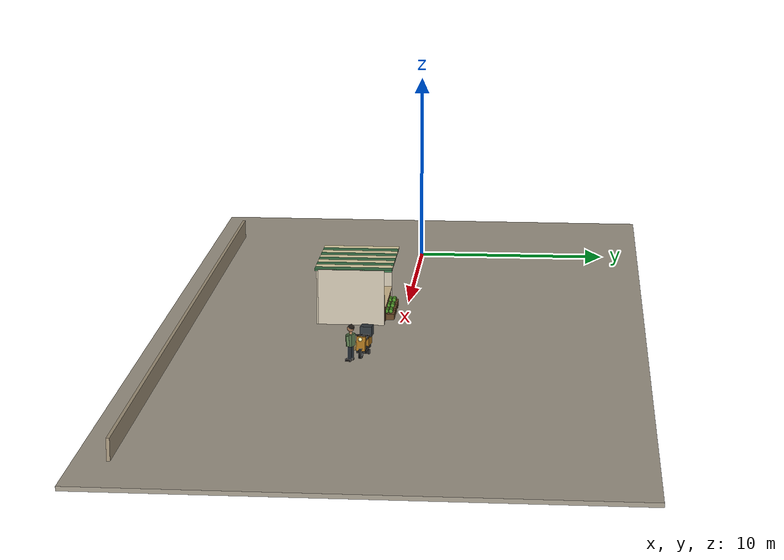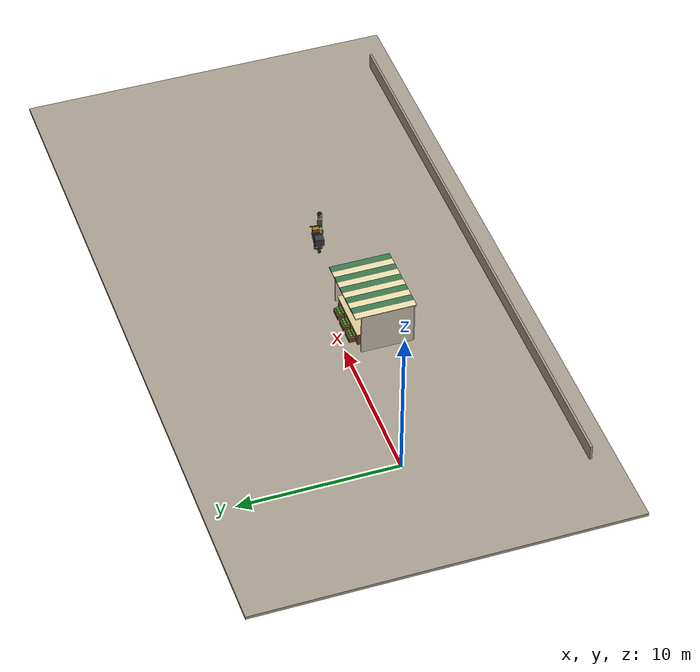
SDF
<sdf version="1.10">
 <world name="swan_market">
  <model name="ground">
   <static>true</static>
   <pose>15 0 -0.1 0 0 0</pose>
   <link name="body">
    <collision name="box_collision"><geometry><box><size>46 24 0.2</size></box></geometry></collision>
    <visual name="box_visual">
     <geometry><box><size>46 24 0.2</size></box></geometry>
     <material><ambient>0.64 0.61 0.55 1</ambient><diffuse>0.64 0.61 0.55 1</diffuse></material>
    </visual>
   </link>
  </model>
  <model name="boundary_-1">
   <static>true</static>
   <pose>16 -10.5 0.5 0 0 0</pose>
   <link name="body">
    <collision name="box_collision"><geometry><box><size>38 0.15 1</size></box></geometry></collision>
    <visual name="box_visual">
     <geometry><box><size>38 0.15 1</size></box></geometry>
     <material><ambient>0.65 0.59 0.49 1</ambient><diffuse>0.65 0.59 0.49 1</diffuse></material>
    </visual>
   </link>
  </model>
  <model name="stall_05">
   <static>true</static>
   <pose>12 -2.5575 0 0 0 0</pose>
   <link name="body">
    <collision name="rear_collision">
     <pose>0 -1.65 1.4 0 0 0</pose>
     <geometry><box><size>4.8 0.15 2.8</size></box></geometry>
    </collision>
    <visual name="rear_visual">
     <pose>0 -1.65 1.4 0 0 0</pose>
     <geometry><box><size>4.8 0.15 2.8</size></box></geometry>
     <material><ambient>0.78 0.74 0.65 1</ambient><diffuse>0.78 0.74 0.65 1</diffuse></material>
    </visual>
    <collision name="side_-2.35_collision">
     <pose>-2.35 0 1.4 0 0 0</pose>
     <geometry><box><size>0.12 3.3 2.8</size></box></geometry>
    </collision>
    <visual name="side_-2.35_visual">
     <pose>-2.35 0 1.4 0 0 0</pose>
     <geometry><box><size>0.12 3.3 2.8</size></box></geometry>
     <material><ambient>0.81 0.77 0.69 1</ambient><diffuse>0.81 0.77 0.69 1</diffuse></material>
    </visual>
    <collision name="side_2.35_collision">
     <pose>2.35 0 1.4 0 0 0</pose>
     <geometry><box><size>0.12 3.3 2.8</size></box></geometry>
    </collision>
    <visual name="side_2.35_visual">
     <pose>2.35 0 1.4 0 0 0</pose>
     <geometry><box><size>0.12 3.3 2.8</size></box></geometry>
     <material><ambient>0.81 0.77 0.69 1</ambient><diffuse>0.81 0.77 0.69 1</diffuse></material>
    </visual>
    <collision name="counter_collision">
     <pose>0 1.22 0.4 0 0 0</pose>
     <geometry><box><size>3.5 0.85 0.8</size></box></geometry>
    </collision>
    <visual name="counter_visual">
     <pose>0 1.22 0.4 0 0 0</pose>
     <geometry><box><size>3.5 0.85 0.8</size></box></geometry>
     <material><ambient>0.47 0.32 0.21 1</ambient><diffuse>0.47 0.32 0.21 1</diffuse></material>
    </visual>
    <collision name="counter_top_collision">
     <pose>0 1.22 0.83 0 0 0</pose>
     <geometry><box><size>3.6 0.95 0.06</size></box></geometry>
    </collision>
    <visual name="counter_top_visual">
     <pose>0 1.22 0.83 0 0 0</pose>
     <geometry><box><size>3.6 0.95 0.06</size></box></geometry>
     <material><ambient>0.86 0.77 0.59 1</ambient><diffuse>0.86 0.77 0.59 1</diffuse></material>
    </visual>
    <collision name="awning_0_collision">
     <pose>-2.16 0.1 2.78 0 0 0</pose>
     <geometry><box><size>0.48 3.85 0.1</size></box></geometry>
    </collision>
    <visual name="awning_0_visual">
     <pose>-2.16 0.1 2.78 0 0 0</pose>
     <geometry><box><size>0.48 3.85 0.1</size></box></geometry>
     <material><ambient>0.92 0.86 0.68 1</ambient><diffuse>0.92 0.86 0.68 1</diffuse></material>
    </visual>
    <collision name="awning_1_collision">
     <pose>-1.68 0.1 2.78 0 0 0</pose>
     <geometry><box><size>0.48 3.85 0.1</size></box></geometry>
    </collision>
    <visual name="awning_1_visual">
     <pose>-1.68 0.1 2.78 0 0 0</pose>
     <geometry><box><size>0.48 3.85 0.1</size></box></geometry>
     <material><ambient>0.23 0.46 0.29 1</ambient><diffuse>0.23 0.46 0.29 1</diffuse></material>
    </visual>
    <collision name="awning_2_collision">
     <pose>-1.2 0.1 2.78 0 0 0</pose>
     <geometry><box><size>0.48 3.85 0.1</size></box></geometry>
    </collision>
    <visual name="awning_2_visual">
     <pose>-1.2 0.1 2.78 0 0 0</pose>
     <geometry><box><size>0.48 3.85 0.1</size></box></geometry>
     <material><ambient>0.92 0.86 0.68 1</ambient><diffuse>0.92 0.86 0.68 1</diffuse></material>
    </visual>
    <collision name="awning_3_collision">
     <pose>-0.72 0.1 2.78 0 0 0</pose>
     <geometry><box><size>0.48 3.85 0.1</size></box></geometry>
    </collision>
    <visual name="awning_3_visual">
     <pose>-0.72 0.1 2.78 0 0 0</pose>
     <geometry><box><size>0.48 3.85 0.1</size></box></geometry>
     <material><ambient>0.23 0.46 0.29 1</ambient><diffuse>0.23 0.46 0.29 1</diffuse></material>
    </visual>
    <collision name="awning_4_collision">
     <pose>-0.24 0.1 2.78 0 0 0</pose>
     <geometry><box><size>0.48 3.85 0.1</size></box></geometry>
    </collision>
    <visual name="awning_4_visual">
     <pose>-0.24 0.1 2.78 0 0 0</pose>
     <geometry><box><size>0.48 3.85 0.1</size></box></geometry>
     <material><ambient>0.92 0.86 0.68 1</ambient><diffuse>0.92 0.86 0.68 1</diffuse></material>
    </visual>
    <collision name="awning_5_collision">
     <pose>0.24 0.1 2.78 0 0 0</pose>
     <geometry><box><size>0.48 3.85 0.1</size></box></geometry>
    </collision>
    <visual name="awning_5_visual">
     <pose>0.24 0.1 2.78 0 0 0</pose>
     <geometry><box><size>0.48 3.85 0.1</size></box></geometry>
     <material><ambient>0.23 0.46 0.29 1</ambient><diffuse>0.23 0.46 0.29 1</diffuse></material>
    </visual>
    <collision name="awning_6_collision">
     <pose>0.72 0.1 2.78 0 0 0</pose>
     <geometry><box><size>0.48 3.85 0.1</size></box></geometry>
    </collision>
    <visual name="awning_6_visual">
     <pose>0.72 0.1 2.78 0 0 0</pose>
     <geometry><box><size>0.48 3.85 0.1</size></box></geometry>
     <material><ambient>0.92 0.86 0.68 1</ambient><diffuse>0.92 0.86 0.68 1</diffuse></material>
    </visual>
    <collision name="awning_7_collision">
     <pose>1.2 0.1 2.78 0 0 0</pose>
     <geometry><box><size>0.48 3.85 0.1</size></box></geometry>
    </collision>
    <visual name="awning_7_visual">
     <pose>1.2 0.1 2.78 0 0 0</pose>
     <geometry><box><size>0.48 3.85 0.1</size></box></geometry>
     <material><ambient>0.23 0.46 0.29 1</ambient><diffuse>0.23 0.46 0.29 1</diffuse></material>
    </visual>
    <collision name="awning_8_collision">
     <pose>1.68 0.1 2.78 0 0 0</pose>
     <geometry><box><size>0.48 3.85 0.1</size></box></geometry>
    </collision>
    <visual name="awning_8_visual">
     <pose>1.68 0.1 2.78 0 0 0</pose>
     <geometry><box><size>0.48 3.85 0.1</size></box></geometry>
     <material><ambient>0.92 0.86 0.68 1</ambient><diffuse>0.92 0.86 0.68 1</diffuse></material>
    </visual>
    <collision name="awning_9_collision">
     <pose>2.16 0.1 2.78 0 0 0</pose>
     <geometry><box><size>0.48 3.85 0.1</size></box></geometry>
    </collision>
    <visual name="awning_9_visual">
     <pose>2.16 0.1 2.78 0 0 0</pose>
     <geometry><box><size>0.48 3.85 0.1</size></box></geometry>
     <material><ambient>0.23 0.46 0.29 1</ambient><diffuse>0.23 0.46 0.29 1</diffuse></material>
    </visual>
    <collision name="crate_-1_collision">
     <pose>-1.04 1.77 0.15 0 0 0</pose>
     <geometry><box><size>0.78 0.6 0.3</size></box></geometry>
    </collision>
    <visual name="crate_-1_visual">
     <pose>-1.04 1.77 0.15 0 0 0</pose>
     <geometry><box><size>0.78 0.6 0.3</size></box></geometry>
     <material><ambient>0.4 0.28 0.15 1</ambient><diffuse>0.4 0.28 0.15 1</diffuse></material>
    </visual>
    <visual name="produce_-1_0_visual">
     <pose>-1.25 1.66 0.39 0 0 0</pose>
     <geometry><sphere><radius>0.105</radius></sphere></geometry>
     <material><ambient>0.31 0.58 0.16 1</ambient><diffuse>0.31 0.58 0.16 1</diffuse></material>
    </visual>
    <visual name="produce_-1_1_visual">
     <pose>-1.04 1.66 0.39 0 0 0</pose>
     <geometry><sphere><radius>0.105</radius></sphere></geometry>
     <material><ambient>0.31 0.58 0.16 1</ambient><diffuse>0.31 0.58 0.16 1</diffuse></material>
    </visual>
    <visual name="produce_-1_2_visual">
     <pose>-0.83 1.66 0.39 0 0 0</pose>
     <geometry><sphere><radius>0.105</radius></sphere></geometry>
     <material><ambient>0.31 0.58 0.16 1</ambient><diffuse>0.31 0.58 0.16 1</diffuse></material>
    </visual>
    <visual name="produce_-1_3_visual">
     <pose>-1.25 1.88 0.39 0 0 0</pose>
     <geometry><sphere><radius>0.105</radius></sphere></geometry>
     <material><ambient>0.31 0.58 0.16 1</ambient><diffuse>0.31 0.58 0.16 1</diffuse></material>
    </visual>
    <visual name="produce_-1_4_visual">
     <pose>-1.04 1.88 0.39 0 0 0</pose>
     <geometry><sphere><radius>0.105</radius></sphere></geometry>
     <material><ambient>0.31 0.58 0.16 1</ambient><diffuse>0.31 0.58 0.16 1</diffuse></material>
    </visual>
    <visual name="produce_-1_5_visual">
     <pose>-0.83 1.88 0.39 0 0 0</pose>
     <geometry><sphere><radius>0.105</radius></sphere></geometry>
     <material><ambient>0.31 0.58 0.16 1</ambient><diffuse>0.31 0.58 0.16 1</diffuse></material>
    </visual>
    <collision name="crate_0_collision">
     <pose>0 1.77 0.15 0 0 0</pose>
     <geometry><box><size>0.78 0.6 0.3</size></box></geometry>
    </collision>
    <visual name="crate_0_visual">
     <pose>0 1.77 0.15 0 0 0</pose>
     <geometry><box><size>0.78 0.6 0.3</size></box></geometry>
     <material><ambient>0.4 0.28 0.15 1</ambient><diffuse>0.4 0.28 0.15 1</diffuse></material>
    </visual>
    <visual name="produce_0_0_visual">
     <pose>-0.21 1.66 0.39 0 0 0</pose>
     <geometry><sphere><radius>0.105</radius></sphere></geometry>
     <material><ambient>0.31 0.58 0.16 1</ambient><diffuse>0.31 0.58 0.16 1</diffuse></material>
    </visual>
    <visual name="produce_0_1_visual">
     <pose>0 1.66 0.39 0 0 0</pose>
     <geometry><sphere><radius>0.105</radius></sphere></geometry>
     <material><ambient>0.31 0.58 0.16 1</ambient><diffuse>0.31 0.58 0.16 1</diffuse></material>
    </visual>
    <visual name="produce_0_2_visual">
     <pose>0.21 1.66 0.39 0 0 0</pose>
     <geometry><sphere><radius>0.105</radius></sphere></geometry>
     <material><ambient>0.31 0.58 0.16 1</ambient><diffuse>0.31 0.58 0.16 1</diffuse></material>
    </visual>
    <visual name="produce_0_3_visual">
     <pose>-0.21 1.88 0.39 0 0 0</pose>
     <geometry><sphere><radius>0.105</radius></sphere></geometry>
     <material><ambient>0.31 0.58 0.16 1</ambient><diffuse>0.31 0.58 0.16 1</diffuse></material>
    </visual>
    <visual name="produce_0_4_visual">
     <pose>0 1.88 0.39 0 0 0</pose>
     <geometry><sphere><radius>0.105</radius></sphere></geometry>
     <material><ambient>0.31 0.58 0.16 1</ambient><diffuse>0.31 0.58 0.16 1</diffuse></material>
    </visual>
    <visual name="produce_0_5_visual">
     <pose>0.21 1.88 0.39 0 0 0</pose>
     <geometry><sphere><radius>0.105</radius></sphere></geometry>
     <material><ambient>0.31 0.58 0.16 1</ambient><diffuse>0.31 0.58 0.16 1</diffuse></material>
    </visual>
    <collision name="crate_1_collision">
     <pose>1.04 1.77 0.15 0 0 0</pose>
     <geometry><box><size>0.78 0.6 0.3</size></box></geometry>
    </collision>
    <visual name="crate_1_visual">
     <pose>1.04 1.77 0.15 0 0 0</pose>
     <geometry><box><size>0.78 0.6 0.3</size></box></geometry>
     <material><ambient>0.4 0.28 0.15 1</ambient><diffuse>0.4 0.28 0.15 1</diffuse></material>
    </visual>
    <visual name="produce_1_0_visual">
     <pose>0.83 1.66 0.39 0 0 0</pose>
     <geometry><sphere><radius>0.105</radius></sphere></geometry>
     <material><ambient>0.31 0.58 0.16 1</ambient><diffuse>0.31 0.58 0.16 1</diffuse></material>
    </visual>
    <visual name="produce_1_1_visual">
     <pose>1.04 1.66 0.39 0 0 0</pose>
     <geometry><sphere><radius>0.105</radius></sphere></geometry>
     <material><ambient>0.31 0.58 0.16 1</ambient><diffuse>0.31 0.58 0.16 1</diffuse></material>
    </visual>
    <visual name="produce_1_2_visual">
     <pose>1.25 1.66 0.39 0 0 0</pose>
     <geometry><sphere><radius>0.105</radius></sphere></geometry>
     <material><ambient>0.31 0.58 0.16 1</ambient><diffuse>0.31 0.58 0.16 1</diffuse></material>
    </visual>
    <visual name="produce_1_3_visual">
     <pose>0.83 1.88 0.39 0 0 0</pose>
     <geometry><sphere><radius>0.105</radius></sphere></geometry>
     <material><ambient>0.31 0.58 0.16 1</ambient><diffuse>0.31 0.58 0.16 1</diffuse></material>
    </visual>
    <visual name="produce_1_4_visual">
     <pose>1.04 1.88 0.39 0 0 0</pose>
     <geometry><sphere><radius>0.105</radius></sphere></geometry>
     <material><ambient>0.31 0.58 0.16 1</ambient><diffuse>0.31 0.58 0.16 1</diffuse></material>
    </visual>
    <visual name="produce_1_5_visual">
     <pose>1.25 1.88 0.39 0 0 0</pose>
     <geometry><sphere><radius>0.105</radius></sphere></geometry>
     <material><ambient>0.31 0.58 0.16 1</ambient><diffuse>0.31 0.58 0.16 1</diffuse></material>
    </visual>
   </link>
  </model>
  <model name="shopper_grocery">
   <static>true</static>
   <pose>20.405 -1.9859 0 0 0 -1.9395</pose>
   <link name="body">
    <collision name="leg_-1_collision">
     <pose>0 -0.12 0.4 0 0 0</pose>
     <geometry><cylinder><radius>0.085</radius><length>0.68</length></cylinder></geometry>
    </collision>
    <visual name="leg_-1_visual">
     <pose>0 -0.12 0.4 0 0 0</pose>
     <geometry><cylinder><radius>0.085</radius><length>0.68</length></cylinder></geometry>
     <material><ambient>0.12 0.15 0.18 1</ambient><diffuse>0.12 0.15 0.18 1</diffuse></material>
    </visual>
    <collision name="shoe_-1_collision">
     <pose>0.06 -0.12 0.055 0 0 0</pose>
     <geometry><box><size>0.28 0.17 0.11</size></box></geometry>
    </collision>
    <visual name="shoe_-1_visual">
     <pose>0.06 -0.12 0.055 0 0 0</pose>
     <geometry><box><size>0.28 0.17 0.11</size></box></geometry>
     <material><ambient>0.08 0.07 0.06 1</ambient><diffuse>0.08 0.07 0.06 1</diffuse></material>
    </visual>
    <collision name="arm_-1_collision">
     <pose>0.02 -0.27 1.02 0 -0.12 0</pose>
     <geometry><cylinder><radius>0.068</radius><length>0.48</length></cylinder></geometry>
    </collision>
    <visual name="arm_-1_visual">
     <pose>0.02 -0.27 1.02 0 -0.12 0</pose>
     <geometry><cylinder><radius>0.068</radius><length>0.48</length></cylinder></geometry>
     <material><ambient>0.36 0.48 0.31 1</ambient><diffuse>0.36 0.48 0.31 1</diffuse></material>
    </visual>
    <collision name="leg_1_collision">
     <pose>0 0.12 0.4 0 0 0</pose>
     <geometry><cylinder><radius>0.085</radius><length>0.68</length></cylinder></geometry>
    </collision>
    <visual name="leg_1_visual">
     <pose>0 0.12 0.4 0 0 0</pose>
     <geometry><cylinder><radius>0.085</radius><length>0.68</length></cylinder></geometry>
     <material><ambient>0.12 0.15 0.18 1</ambient><diffuse>0.12 0.15 0.18 1</diffuse></material>
    </visual>
    <collision name="shoe_1_collision">
     <pose>0.06 0.12 0.055 0 0 0</pose>
     <geometry><box><size>0.28 0.17 0.11</size></box></geometry>
    </collision>
    <visual name="shoe_1_visual">
     <pose>0.06 0.12 0.055 0 0 0</pose>
     <geometry><box><size>0.28 0.17 0.11</size></box></geometry>
     <material><ambient>0.08 0.07 0.06 1</ambient><diffuse>0.08 0.07 0.06 1</diffuse></material>
    </visual>
    <collision name="arm_1_collision">
     <pose>0.02 0.27 1.02 0 0.12 0</pose>
     <geometry><cylinder><radius>0.068</radius><length>0.48</length></cylinder></geometry>
    </collision>
    <visual name="arm_1_visual">
     <pose>0.02 0.27 1.02 0 0.12 0</pose>
     <geometry><cylinder><radius>0.068</radius><length>0.48</length></cylinder></geometry>
     <material><ambient>0.36 0.48 0.31 1</ambient><diffuse>0.36 0.48 0.31 1</diffuse></material>
    </visual>
    <collision name="torso_collision">
     <pose>0 0 1.02 0 0 0</pose>
     <geometry><box><size>0.3 0.43 0.58</size></box></geometry>
    </collision>
    <visual name="torso_visual">
     <pose>0 0 1.02 0 0 0</pose>
     <geometry><box><size>0.3 0.43 0.58</size></box></geometry>
     <material><ambient>0.36 0.48 0.31 1</ambient><diffuse>0.36 0.48 0.31 1</diffuse></material>
    </visual>
    <visual name="neck_visual">
     <pose>0 0 1.37 0 0 0</pose>
     <geometry><cylinder><radius>0.07</radius><length>0.13</length></cylinder></geometry>
     <material><ambient>0.77 0.56 0.4 1</ambient><diffuse>0.77 0.56 0.4 1</diffuse></material>
    </visual>
    <collision name="head_collision">
     <pose>0 0 1.57 0 0 0</pose>
     <geometry><sphere><radius>0.16</radius></sphere></geometry>
    </collision>
    <visual name="head_visual">
     <pose>0 0 1.57 0 0 0</pose>
     <geometry><sphere><radius>0.16</radius></sphere></geometry>
     <material><ambient>0.77 0.56 0.4 1</ambient><diffuse>0.77 0.56 0.4 1</diffuse></material>
    </visual>
    <visual name="hair_visual">
     <pose>-0.025 0 1.63 0 0 0</pose>
     <geometry><sphere><radius>0.155</radius></sphere></geometry>
     <material><ambient>0.1 0.08 0.06 1</ambient><diffuse>0.1 0.08 0.06 1</diffuse></material>
    </visual>
    <collision name="shopping_bag_collision">
     <pose>0.04 -0.38 0.6 0 0 0</pose>
     <geometry><box><size>0.24 0.17 0.33</size></box></geometry>
    </collision>
    <visual name="shopping_bag_visual">
     <pose>0.04 -0.38 0.6 0 0 0</pose>
     <geometry><box><size>0.24 0.17 0.33</size></box></geometry>
     <material><ambient>0.78 0.65 0.39 1</ambient><diffuse>0.78 0.65 0.39 1</diffuse></material>
    </visual>
   </link>
  </model>
  <model name="motorcycle_unloading">
   <static>true</static>
   <pose>19.404 -1.4645 0 0 0 -0.14026</pose>
   <link name="body">
    <collision name="tire_0_collision">
     <pose>-0.61 0 0.25 1.5708 0 0</pose>
     <geometry><cylinder><radius>0.25</radius><length>0.14</length></cylinder></geometry>
    </collision>
    <visual name="tire_0_visual">
     <pose>-0.61 0 0.25 1.5708 0 0</pose>
     <geometry><cylinder><radius>0.25</radius><length>0.14</length></cylinder></geometry>
     <material><ambient>0.075 0.075 0.07 1</ambient><diffuse>0.075 0.075 0.07 1</diffuse></material>
    </visual>
    <visual name="hub_0_visual">
     <pose>-0.61 0 0.25 1.5708 0 0</pose>
     <geometry><cylinder><radius>0.13</radius><length>0.145</length></cylinder></geometry>
     <material><ambient>0.57 0.59 0.6 1</ambient><diffuse>0.57 0.59 0.6 1</diffuse></material>
    </visual>
    <collision name="tire_1_collision">
     <pose>0.62 0 0.25 1.5708 0 0</pose>
     <geometry><cylinder><radius>0.25</radius><length>0.14</length></cylinder></geometry>
    </collision>
    <visual name="tire_1_visual">
     <pose>0.62 0 0.25 1.5708 0 0</pose>
     <geometry><cylinder><radius>0.25</radius><length>0.14</length></cylinder></geometry>
     <material><ambient>0.075 0.075 0.07 1</ambient><diffuse>0.075 0.075 0.07 1</diffuse></material>
    </visual>
    <visual name="hub_1_visual">
     <pose>0.62 0 0.25 1.5708 0 0</pose>
     <geometry><cylinder><radius>0.13</radius><length>0.145</length></cylinder></geometry>
     <material><ambient>0.57 0.59 0.6 1</ambient><diffuse>0.57 0.59 0.6 1</diffuse></material>
    </visual>
    <collision name="deck_collision">
     <pose>0 0 0.33 0 0 0</pose>
     <geometry><box><size>1.2 0.43 0.17</size></box></geometry>
    </collision>
    <visual name="deck_visual">
     <pose>0 0 0.33 0 0 0</pose>
     <geometry><box><size>1.2 0.43 0.17</size></box></geometry>
     <material><ambient>0.18 0.18 0.18 1</ambient><diffuse>0.18 0.18 0.18 1</diffuse></material>
    </visual>
    <collision name="rear_body_collision">
     <pose>-0.36 0 0.59 0 0 0</pose>
     <geometry><box><size>0.65 0.46 0.4</size></box></geometry>
    </collision>
    <visual name="rear_body_visual">
     <pose>-0.36 0 0.59 0 0 0</pose>
     <geometry><box><size>0.65 0.46 0.4</size></box></geometry>
     <material><ambient>0.64 0.43 0.1 1</ambient><diffuse>0.64 0.43 0.1 1</diffuse></material>
    </visual>
    <collision name="seat_collision">
     <pose>-0.2 0 0.83 0 0 0</pose>
     <geometry><box><size>0.8 0.4 0.12</size></box></geometry>
    </collision>
    <visual name="seat_visual">
     <pose>-0.2 0 0.83 0 0 0</pose>
     <geometry><box><size>0.8 0.4 0.12</size></box></geometry>
     <material><ambient>0.1 0.1 0.1 1</ambient><diffuse>0.1 0.1 0.1 1</diffuse></material>
    </visual>
    <collision name="front_fairing_collision">
     <pose>0.53 0 0.69 0 -0.2 0</pose>
     <geometry><box><size>0.23 0.43 0.69</size></box></geometry>
    </collision>
    <visual name="front_fairing_visual">
     <pose>0.53 0 0.69 0 -0.2 0</pose>
     <geometry><box><size>0.23 0.43 0.69</size></box></geometry>
     <material><ambient>0.64 0.43 0.1 1</ambient><diffuse>0.64 0.43 0.1 1</diffuse></material>
    </visual>
    <collision name="handlebar_collision">
     <pose>0.56 0 1.12 1.5708 0 0</pose>
     <geometry><cylinder><radius>0.035</radius><length>0.72</length></cylinder></geometry>
    </collision>
    <visual name="handlebar_visual">
     <pose>0.56 0 1.12 1.5708 0 0</pose>
     <geometry><cylinder><radius>0.035</radius><length>0.72</length></cylinder></geometry>
     <material><ambient>0.18 0.18 0.18 1</ambient><diffuse>0.18 0.18 0.18 1</diffuse></material>
    </visual>
    <visual name="headlight_visual">
     <pose>0.7 0 0.94 0 0 0</pose>
     <geometry><sphere><radius>0.095</radius></sphere></geometry>
     <material><ambient>0.96 0.92 0.66 1</ambient><diffuse>0.96 0.92 0.66 1</diffuse></material>
    </visual>
    <collision name="delivery_box_collision">
     <pose>-0.65 0 1.01 0 0 0</pose>
     <geometry><box><size>0.51 0.55 0.48</size></box></geometry>
    </collision>
    <visual name="delivery_box_visual">
     <pose>-0.65 0 1.01 0 0 0</pose>
     <geometry><box><size>0.51 0.55 0.48</size></box></geometry>
     <material><ambient>0.2 0.23 0.25 1</ambient><diffuse>0.2 0.23 0.25 1</diffuse></material>
    </visual>
    <collision name="stand_collision">
     <pose>-0.2 0 0.1 0 0 0</pose>
     <geometry><box><size>0.12 0.5 0.2</size></box></geometry>
    </collision>
    <visual name="stand_visual">
     <pose>-0.2 0 0.1 0 0 0</pose>
     <geometry><box><size>0.12 0.5 0.2</size></box></geometry>
     <material><ambient>0.12 0.12 0.12 1</ambient><diffuse>0.12 0.12 0.12 1</diffuse></material>
    </visual>
   </link>
  </model>
 </world>
</sdf>
